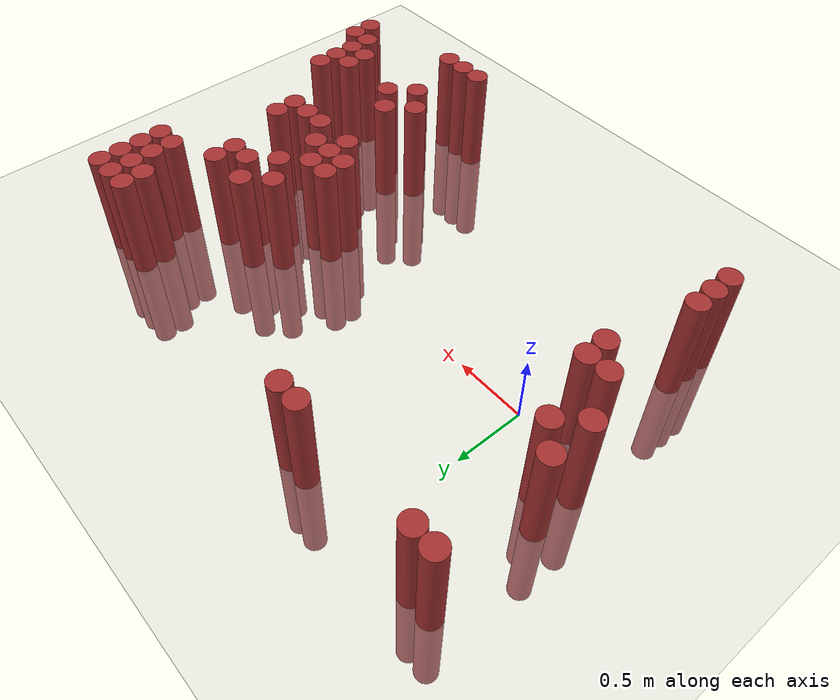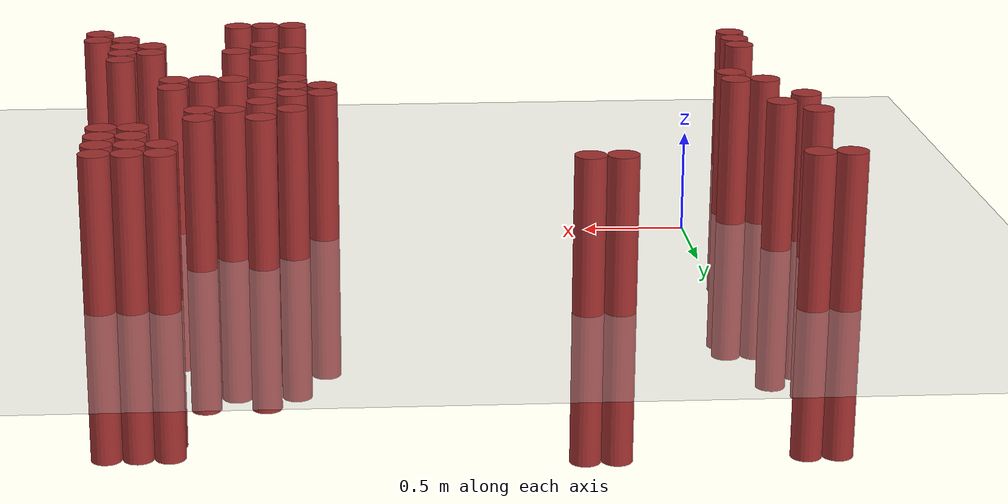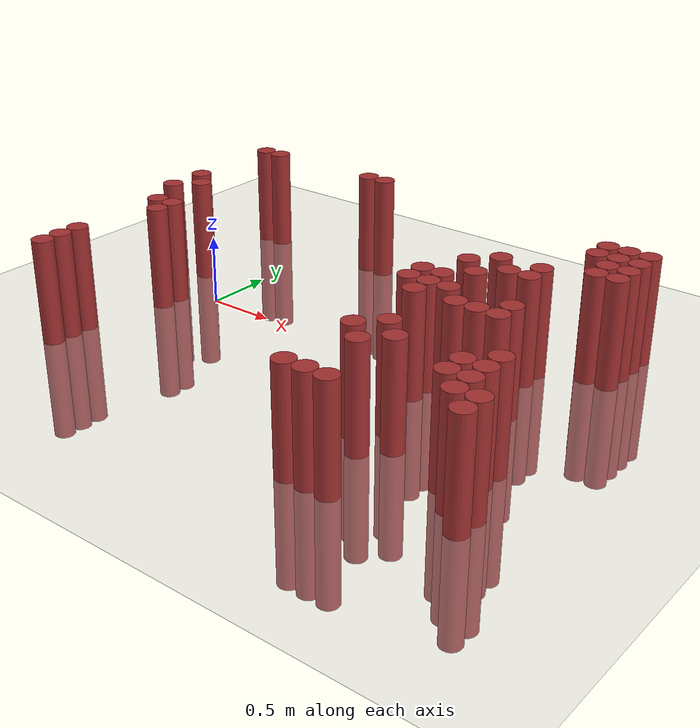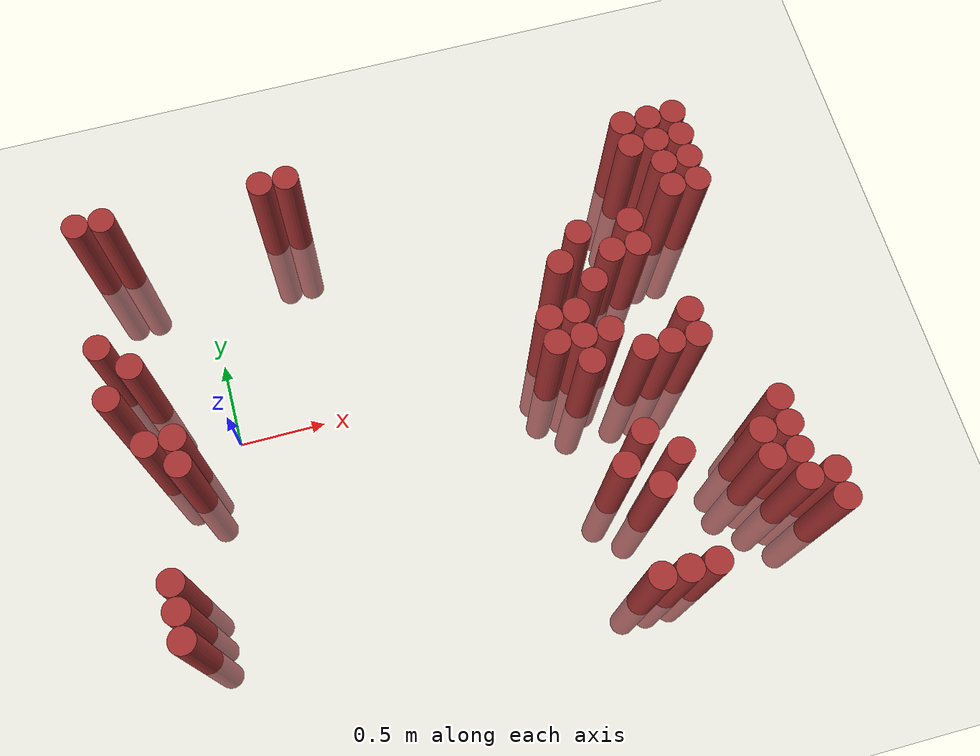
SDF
<sdf version="1.6">
 <world name="default">
  <model name="ground_plane">
   <static>1</static>
   <link name="link">
    <collision name="collision">
     <geometry><plane><normal>0 0 1</normal><size>100 100</size></plane></geometry>
     <surface><friction><ode><mu>100</mu><mu2>50</mu2></ode></friction></surface>
    </collision>
    <visual name="visual">
     <cast_shadows>0</cast_shadows>
     <geometry><plane><normal>0 0 1</normal><size>100 100</size></plane></geometry>
     <material>
      <script><uri>file://media/materials/scripts/gazebo.material</uri><name>Gazebo/Grey</name></script>
     </material>
    </visual>
   </link>
  </model>
  <model name="unit_cylinder_356">
   <static>1</static>
   <pose>-0.575000 0.175000 0.000000 0.000000 0.000000 0.000000</pose>
   <link name="link">
    <inertial>
     <mass>1</mass>
     <inertia><ixx>0.145833</ixx><ixy>0</ixy><ixz>0</ixz><iyy>0.145833</iyy><iyz>0</iyz><izz>0.125</izz></inertia>
    </inertial>
    <collision name="collision">
     <geometry><cylinder><radius>0.075000</radius><length>1.5</length></cylinder></geometry>
    </collision>
    <visual name="visual">
     <geometry><cylinder><radius>0.075000</radius><length>1.5</length></cylinder></geometry>
     <material>
      <ambient>0.648000 0.192000 0.192000 1</ambient>
      <diffuse>0.648000 0.192000 0.192000 1</diffuse>
     </material>
     <material>
      <script><name>Gazebo/Grey</name><uri>file://media/materials/scripts/gazebo.material</uri></script>
     </material>
    </visual>
   </link>
  </model>
  <model name="unit_cylinder_357">
   <static>1</static>
   <pose>-0.575000 0.475000 0.000000 0.000000 0.000000 0.000000</pose>
   <link name="link">
    <inertial>
     <mass>1</mass>
     <inertia><ixx>0.145833</ixx><ixy>0</ixy><ixz>0</ixz><iyy>0.145833</iyy><iyz>0</iyz><izz>0.125</izz></inertia>
    </inertial>
    <collision name="collision">
     <geometry><cylinder><radius>0.075000</radius><length>1.5</length></cylinder></geometry>
    </collision>
    <visual name="visual">
     <geometry><cylinder><radius>0.075000</radius><length>1.5</length></cylinder></geometry>
     <material>
      <ambient>0.648000 0.192000 0.192000 1</ambient>
      <diffuse>0.648000 0.192000 0.192000 1</diffuse>
     </material>
     <material>
      <script><name>Gazebo/Grey</name><uri>file://media/materials/scripts/gazebo.material</uri></script>
     </material>
    </visual>
   </link>
  </model>
  <model name="unit_cylinder_358">
   <static>1</static>
   <pose>-0.575000 1.225000 0.000000 0.000000 0.000000 0.000000</pose>
   <link name="link">
    <inertial>
     <mass>1</mass>
     <inertia><ixx>0.145833</ixx><ixy>0</ixy><ixz>0</ixz><iyy>0.145833</iyy><iyz>0</iyz><izz>0.125</izz></inertia>
    </inertial>
    <collision name="collision">
     <geometry><cylinder><radius>0.075000</radius><length>1.5</length></cylinder></geometry>
    </collision>
    <visual name="visual">
     <geometry><cylinder><radius>0.075000</radius><length>1.5</length></cylinder></geometry>
     <material>
      <ambient>0.648000 0.192000 0.192000 1</ambient>
      <diffuse>0.648000 0.192000 0.192000 1</diffuse>
     </material>
     <material>
      <script><name>Gazebo/Grey</name><uri>file://media/materials/scripts/gazebo.material</uri></script>
     </material>
    </visual>
   </link>
  </model>
  <model name="unit_cylinder_360">
   <static>1</static>
   <pose>-0.425000 -1.175000 0.000000 0.000000 0.000000 0.000000</pose>
   <link name="link">
    <inertial>
     <mass>1</mass>
     <inertia><ixx>0.145833</ixx><ixy>0</ixy><ixz>0</ixz><iyy>0.145833</iyy><iyz>0</iyz><izz>0.125</izz></inertia>
    </inertial>
    <collision name="collision">
     <geometry><cylinder><radius>0.075000</radius><length>1.5</length></cylinder></geometry>
    </collision>
    <visual name="visual">
     <geometry><cylinder><radius>0.075000</radius><length>1.5</length></cylinder></geometry>
     <material>
      <ambient>0.648000 0.192000 0.192000 1</ambient>
      <diffuse>0.648000 0.192000 0.192000 1</diffuse>
     </material>
     <material>
      <script><name>Gazebo/Grey</name><uri>file://media/materials/scripts/gazebo.material</uri></script>
     </material>
    </visual>
   </link>
  </model>
  <model name="unit_cylinder_361">
   <static>1</static>
   <pose>-0.425000 -1.025000 0.000000 0.000000 0.000000 0.000000</pose>
   <link name="link">
    <inertial>
     <mass>1</mass>
     <inertia><ixx>0.145833</ixx><ixy>0</ixy><ixz>0</ixz><iyy>0.145833</iyy><iyz>0</iyz><izz>0.125</izz></inertia>
    </inertial>
    <collision name="collision">
     <geometry><cylinder><radius>0.075000</radius><length>1.5</length></cylinder></geometry>
    </collision>
    <visual name="visual">
     <geometry><cylinder><radius>0.075000</radius><length>1.5</length></cylinder></geometry>
     <material>
      <ambient>0.648000 0.192000 0.192000 1</ambient>
      <diffuse>0.648000 0.192000 0.192000 1</diffuse>
     </material>
     <material>
      <script><name>Gazebo/Grey</name><uri>file://media/materials/scripts/gazebo.material</uri></script>
     </material>
    </visual>
   </link>
  </model>
  <model name="unit_cylinder_362">
   <static>1</static>
   <pose>-0.425000 -0.875000 0.000000 0.000000 0.000000 0.000000</pose>
   <link name="link">
    <inertial>
     <mass>1</mass>
     <inertia><ixx>0.145833</ixx><ixy>0</ixy><ixz>0</ixz><iyy>0.145833</iyy><iyz>0</iyz><izz>0.125</izz></inertia>
    </inertial>
    <collision name="collision">
     <geometry><cylinder><radius>0.075000</radius><length>1.5</length></cylinder></geometry>
    </collision>
    <visual name="visual">
     <geometry><cylinder><radius>0.075000</radius><length>1.5</length></cylinder></geometry>
     <material>
      <ambient>0.648000 0.192000 0.192000 1</ambient>
      <diffuse>0.648000 0.192000 0.192000 1</diffuse>
     </material>
     <material>
      <script><name>Gazebo/Grey</name><uri>file://media/materials/scripts/gazebo.material</uri></script>
     </material>
    </visual>
   </link>
  </model>
  <model name="unit_cylinder_363">
   <static>1</static>
   <pose>-0.425000 -0.125000 0.000000 0.000000 0.000000 0.000000</pose>
   <link name="link">
    <inertial>
     <mass>1</mass>
     <inertia><ixx>0.145833</ixx><ixy>0</ixy><ixz>0</ixz><iyy>0.145833</iyy><iyz>0</iyz><izz>0.125</izz></inertia>
    </inertial>
    <collision name="collision">
     <geometry><cylinder><radius>0.075000</radius><length>1.5</length></cylinder></geometry>
    </collision>
    <visual name="visual">
     <geometry><cylinder><radius>0.075000</radius><length>1.5</length></cylinder></geometry>
     <material>
      <ambient>0.648000 0.192000 0.192000 1</ambient>
      <diffuse>0.648000 0.192000 0.192000 1</diffuse>
     </material>
     <material>
      <script><name>Gazebo/Grey</name><uri>file://media/materials/scripts/gazebo.material</uri></script>
     </material>
    </visual>
   </link>
  </model>
  <model name="unit_cylinder_364">
   <static>1</static>
   <pose>-0.425000 0.325000 0.000000 0.000000 0.000000 0.000000</pose>
   <link name="link">
    <inertial>
     <mass>1</mass>
     <inertia><ixx>0.145833</ixx><ixy>0</ixy><ixz>0</ixz><iyy>0.145833</iyy><iyz>0</iyz><izz>0.125</izz></inertia>
    </inertial>
    <collision name="collision">
     <geometry><cylinder><radius>0.075000</radius><length>1.5</length></cylinder></geometry>
    </collision>
    <visual name="visual">
     <geometry><cylinder><radius>0.075000</radius><length>1.5</length></cylinder></geometry>
     <material>
      <ambient>0.648000 0.192000 0.192000 1</ambient>
      <diffuse>0.648000 0.192000 0.192000 1</diffuse>
     </material>
     <material>
      <script><name>Gazebo/Grey</name><uri>file://media/materials/scripts/gazebo.material</uri></script>
     </material>
    </visual>
   </link>
  </model>
  <model name="unit_cylinder_365">
   <static>1</static>
   <pose>-0.425000 1.225000 0.000000 0.000000 0.000000 0.000000</pose>
   <link name="link">
    <inertial>
     <mass>1</mass>
     <inertia><ixx>0.145833</ixx><ixy>0</ixy><ixz>0</ixz><iyy>0.145833</iyy><iyz>0</iyz><izz>0.125</izz></inertia>
    </inertial>
    <collision name="collision">
     <geometry><cylinder><radius>0.075000</radius><length>1.5</length></cylinder></geometry>
    </collision>
    <visual name="visual">
     <geometry><cylinder><radius>0.075000</radius><length>1.5</length></cylinder></geometry>
     <material>
      <ambient>0.648000 0.192000 0.192000 1</ambient>
      <diffuse>0.648000 0.192000 0.192000 1</diffuse>
     </material>
     <material>
      <script><name>Gazebo/Grey</name><uri>file://media/materials/scripts/gazebo.material</uri></script>
     </material>
    </visual>
   </link>
  </model>
  <model name="unit_cylinder_368">
   <static>1</static>
   <pose>-0.275000 -0.275000 0.000000 0.000000 0.000000 0.000000</pose>
   <link name="link">
    <inertial>
     <mass>1</mass>
     <inertia><ixx>0.145833</ixx><ixy>0</ixy><ixz>0</ixz><iyy>0.145833</iyy><iyz>0</iyz><izz>0.125</izz></inertia>
    </inertial>
    <collision name="collision">
     <geometry><cylinder><radius>0.075000</radius><length>1.5</length></cylinder></geometry>
    </collision>
    <visual name="visual">
     <geometry><cylinder><radius>0.075000</radius><length>1.5</length></cylinder></geometry>
     <material>
      <ambient>0.648000 0.192000 0.192000 1</ambient>
      <diffuse>0.648000 0.192000 0.192000 1</diffuse>
     </material>
     <material>
      <script><name>Gazebo/Grey</name><uri>file://media/materials/scripts/gazebo.material</uri></script>
     </material>
    </visual>
   </link>
  </model>
  <model name="unit_cylinder_369">
   <static>1</static>
   <pose>-0.275000 -0.125000 0.000000 0.000000 0.000000 0.000000</pose>
   <link name="link">
    <inertial>
     <mass>1</mass>
     <inertia><ixx>0.145833</ixx><ixy>0</ixy><ixz>0</ixz><iyy>0.145833</iyy><iyz>0</iyz><izz>0.125</izz></inertia>
    </inertial>
    <collision name="collision">
     <geometry><cylinder><radius>0.075000</radius><length>1.5</length></cylinder></geometry>
    </collision>
    <visual name="visual">
     <geometry><cylinder><radius>0.075000</radius><length>1.5</length></cylinder></geometry>
     <material>
      <ambient>0.648000 0.192000 0.192000 1</ambient>
      <diffuse>0.648000 0.192000 0.192000 1</diffuse>
     </material>
     <material>
      <script><name>Gazebo/Grey</name><uri>file://media/materials/scripts/gazebo.material</uri></script>
     </material>
    </visual>
   </link>
  </model>
  <model name="unit_cylinder_377">
   <static>1</static>
   <pose>0.475000 1.225000 0.000000 0.000000 0.000000 0.000000</pose>
   <link name="link">
    <inertial>
     <mass>1</mass>
     <inertia><ixx>0.145833</ixx><ixy>0</ixy><ixz>0</ixz><iyy>0.145833</iyy><iyz>0</iyz><izz>0.125</izz></inertia>
    </inertial>
    <collision name="collision">
     <geometry><cylinder><radius>0.075000</radius><length>1.5</length></cylinder></geometry>
    </collision>
    <visual name="visual">
     <geometry><cylinder><radius>0.075000</radius><length>1.5</length></cylinder></geometry>
     <material>
      <ambient>0.648000 0.192000 0.192000 1</ambient>
      <diffuse>0.648000 0.192000 0.192000 1</diffuse>
     </material>
     <material>
      <script><name>Gazebo/Grey</name><uri>file://media/materials/scripts/gazebo.material</uri></script>
     </material>
    </visual>
   </link>
  </model>
  <model name="unit_cylinder_381">
   <static>1</static>
   <pose>0.625000 1.225000 0.000000 0.000000 0.000000 0.000000</pose>
   <link name="link">
    <inertial>
     <mass>1</mass>
     <inertia><ixx>0.145833</ixx><ixy>0</ixy><ixz>0</ixz><iyy>0.145833</iyy><iyz>0</iyz><izz>0.125</izz></inertia>
    </inertial>
    <collision name="collision">
     <geometry><cylinder><radius>0.075000</radius><length>1.5</length></cylinder></geometry>
    </collision>
    <visual name="visual">
     <geometry><cylinder><radius>0.075000</radius><length>1.5</length></cylinder></geometry>
     <material>
      <ambient>0.648000 0.192000 0.192000 1</ambient>
      <diffuse>0.648000 0.192000 0.192000 1</diffuse>
     </material>
     <material>
      <script><name>Gazebo/Grey</name><uri>file://media/materials/scripts/gazebo.material</uri></script>
     </material>
    </visual>
   </link>
  </model>
  <model name="unit_cylinder_392">
   <static>1</static>
   <pose>1.825000 -0.125000 0.000000 0.000000 0.000000 0.000000</pose>
   <link name="link">
    <inertial>
     <mass>1</mass>
     <inertia><ixx>0.145833</ixx><ixy>0</ixy><ixz>0</ixz><iyy>0.145833</iyy><iyz>0</iyz><izz>0.125</izz></inertia>
    </inertial>
    <collision name="collision">
     <geometry><cylinder><radius>0.075000</radius><length>1.5</length></cylinder></geometry>
    </collision>
    <visual name="visual">
     <geometry><cylinder><radius>0.075000</radius><length>1.5</length></cylinder></geometry>
     <material>
      <ambient>0.648000 0.192000 0.192000 1</ambient>
      <diffuse>0.648000 0.192000 0.192000 1</diffuse>
     </material>
     <material>
      <script><name>Gazebo/Grey</name><uri>file://media/materials/scripts/gazebo.material</uri></script>
     </material>
    </visual>
   </link>
  </model>
  <model name="unit_cylinder_393">
   <static>1</static>
   <pose>1.825000 0.025000 0.000000 0.000000 0.000000 0.000000</pose>
   <link name="link">
    <inertial>
     <mass>1</mass>
     <inertia><ixx>0.145833</ixx><ixy>0</ixy><ixz>0</ixz><iyy>0.145833</iyy><iyz>0</iyz><izz>0.125</izz></inertia>
    </inertial>
    <collision name="collision">
     <geometry><cylinder><radius>0.075000</radius><length>1.5</length></cylinder></geometry>
    </collision>
    <visual name="visual">
     <geometry><cylinder><radius>0.075000</radius><length>1.5</length></cylinder></geometry>
     <material>
      <ambient>0.648000 0.192000 0.192000 1</ambient>
      <diffuse>0.648000 0.192000 0.192000 1</diffuse>
     </material>
     <material>
      <script><name>Gazebo/Grey</name><uri>file://media/materials/scripts/gazebo.material</uri></script>
     </material>
    </visual>
   </link>
  </model>
  <model name="unit_cylinder_394">
   <static>1</static>
   <pose>1.975000 -1.475000 0.000000 0.000000 0.000000 0.000000</pose>
   <link name="link">
    <inertial>
     <mass>1</mass>
     <inertia><ixx>0.145833</ixx><ixy>0</ixy><ixz>0</ixz><iyy>0.145833</iyy><iyz>0</iyz><izz>0.125</izz></inertia>
    </inertial>
    <collision name="collision">
     <geometry><cylinder><radius>0.075000</radius><length>1.5</length></cylinder></geometry>
    </collision>
    <visual name="visual">
     <geometry><cylinder><radius>0.075000</radius><length>1.5</length></cylinder></geometry>
     <material>
      <ambient>0.648000 0.192000 0.192000 1</ambient>
      <diffuse>0.648000 0.192000 0.192000 1</diffuse>
     </material>
     <material>
      <script><name>Gazebo/Grey</name><uri>file://media/materials/scripts/gazebo.material</uri></script>
     </material>
    </visual>
   </link>
  </model>
  <model name="unit_cylinder_395">
   <static>1</static>
   <pose>1.975000 -0.875000 0.000000 0.000000 0.000000 0.000000</pose>
   <link name="link">
    <inertial>
     <mass>1</mass>
     <inertia><ixx>0.145833</ixx><ixy>0</ixy><ixz>0</ixz><iyy>0.145833</iyy><iyz>0</iyz><izz>0.125</izz></inertia>
    </inertial>
    <collision name="collision">
     <geometry><cylinder><radius>0.075000</radius><length>1.5</length></cylinder></geometry>
    </collision>
    <visual name="visual">
     <geometry><cylinder><radius>0.075000</radius><length>1.5</length></cylinder></geometry>
     <material>
      <ambient>0.648000 0.192000 0.192000 1</ambient>
      <diffuse>0.648000 0.192000 0.192000 1</diffuse>
     </material>
     <material>
      <script><name>Gazebo/Grey</name><uri>file://media/materials/scripts/gazebo.material</uri></script>
     </material>
    </visual>
   </link>
  </model>
  <model name="unit_cylinder_396">
   <static>1</static>
   <pose>1.975000 -0.275000 0.000000 0.000000 0.000000 0.000000</pose>
   <link name="link">
    <inertial>
     <mass>1</mass>
     <inertia><ixx>0.145833</ixx><ixy>0</ixy><ixz>0</ixz><iyy>0.145833</iyy><iyz>0</iyz><izz>0.125</izz></inertia>
    </inertial>
    <collision name="collision">
     <geometry><cylinder><radius>0.075000</radius><length>1.5</length></cylinder></geometry>
    </collision>
    <visual name="visual">
     <geometry><cylinder><radius>0.075000</radius><length>1.5</length></cylinder></geometry>
     <material>
      <ambient>0.648000 0.192000 0.192000 1</ambient>
      <diffuse>0.648000 0.192000 0.192000 1</diffuse>
     </material>
     <material>
      <script><name>Gazebo/Grey</name><uri>file://media/materials/scripts/gazebo.material</uri></script>
     </material>
    </visual>
   </link>
  </model>
  <model name="unit_cylinder_397">
   <static>1</static>
   <pose>1.975000 -0.125000 0.000000 0.000000 0.000000 0.000000</pose>
   <link name="link">
    <inertial>
     <mass>1</mass>
     <inertia><ixx>0.145833</ixx><ixy>0</ixy><ixz>0</ixz><iyy>0.145833</iyy><iyz>0</iyz><izz>0.125</izz></inertia>
    </inertial>
    <collision name="collision">
     <geometry><cylinder><radius>0.075000</radius><length>1.5</length></cylinder></geometry>
    </collision>
    <visual name="visual">
     <geometry><cylinder><radius>0.075000</radius><length>1.5</length></cylinder></geometry>
     <material>
      <ambient>0.648000 0.192000 0.192000 1</ambient>
      <diffuse>0.648000 0.192000 0.192000 1</diffuse>
     </material>
     <material>
      <script><name>Gazebo/Grey</name><uri>file://media/materials/scripts/gazebo.material</uri></script>
     </material>
    </visual>
   </link>
  </model>
  <model name="unit_cylinder_398">
   <static>1</static>
   <pose>1.975000 0.025000 0.000000 0.000000 0.000000 0.000000</pose>
   <link name="link">
    <inertial>
     <mass>1</mass>
     <inertia><ixx>0.145833</ixx><ixy>0</ixy><ixz>0</ixz><iyy>0.145833</iyy><iyz>0</iyz><izz>0.125</izz></inertia>
    </inertial>
    <collision name="collision">
     <geometry><cylinder><radius>0.075000</radius><length>1.5</length></cylinder></geometry>
    </collision>
    <visual name="visual">
     <geometry><cylinder><radius>0.075000</radius><length>1.5</length></cylinder></geometry>
     <material>
      <ambient>0.648000 0.192000 0.192000 1</ambient>
      <diffuse>0.648000 0.192000 0.192000 1</diffuse>
     </material>
     <material>
      <script><name>Gazebo/Grey</name><uri>file://media/materials/scripts/gazebo.material</uri></script>
     </material>
    </visual>
   </link>
  </model>
  <model name="unit_cylinder_399">
   <static>1</static>
   <pose>1.975000 0.325000 0.000000 0.000000 0.000000 0.000000</pose>
   <link name="link">
    <inertial>
     <mass>1</mass>
     <inertia><ixx>0.145833</ixx><ixy>0</ixy><ixz>0</ixz><iyy>0.145833</iyy><iyz>0</iyz><izz>0.125</izz></inertia>
    </inertial>
    <collision name="collision">
     <geometry><cylinder><radius>0.075000</radius><length>1.5</length></cylinder></geometry>
    </collision>
    <visual name="visual">
     <geometry><cylinder><radius>0.075000</radius><length>1.5</length></cylinder></geometry>
     <material>
      <ambient>0.648000 0.192000 0.192000 1</ambient>
      <diffuse>0.648000 0.192000 0.192000 1</diffuse>
     </material>
     <material>
      <script><name>Gazebo/Grey</name><uri>file://media/materials/scripts/gazebo.material</uri></script>
     </material>
    </visual>
   </link>
  </model>
  <model name="unit_cylinder_401">
   <static>1</static>
   <pose>2.125000 -1.475000 0.000000 0.000000 0.000000 0.000000</pose>
   <link name="link">
    <inertial>
     <mass>1</mass>
     <inertia><ixx>0.145833</ixx><ixy>0</ixy><ixz>0</ixz><iyy>0.145833</iyy><iyz>0</iyz><izz>0.125</izz></inertia>
    </inertial>
    <collision name="collision">
     <geometry><cylinder><radius>0.075000</radius><length>1.5</length></cylinder></geometry>
    </collision>
    <visual name="visual">
     <geometry><cylinder><radius>0.075000</radius><length>1.5</length></cylinder></geometry>
     <material>
      <ambient>0.648000 0.192000 0.192000 1</ambient>
      <diffuse>0.648000 0.192000 0.192000 1</diffuse>
     </material>
     <material>
      <script><name>Gazebo/Grey</name><uri>file://media/materials/scripts/gazebo.material</uri></script>
     </material>
    </visual>
   </link>
  </model>
  <model name="unit_cylinder_402">
   <static>1</static>
   <pose>2.125000 -1.025000 0.000000 0.000000 0.000000 0.000000</pose>
   <link name="link">
    <inertial>
     <mass>1</mass>
     <inertia><ixx>0.145833</ixx><ixy>0</ixy><ixz>0</ixz><iyy>0.145833</iyy><iyz>0</iyz><izz>0.125</izz></inertia>
    </inertial>
    <collision name="collision">
     <geometry><cylinder><radius>0.075000</radius><length>1.5</length></cylinder></geometry>
    </collision>
    <visual name="visual">
     <geometry><cylinder><radius>0.075000</radius><length>1.5</length></cylinder></geometry>
     <material>
      <ambient>0.648000 0.192000 0.192000 1</ambient>
      <diffuse>0.648000 0.192000 0.192000 1</diffuse>
     </material>
     <material>
      <script><name>Gazebo/Grey</name><uri>file://media/materials/scripts/gazebo.material</uri></script>
     </material>
    </visual>
   </link>
  </model>
  <model name="unit_cylinder_403">
   <static>1</static>
   <pose>2.125000 -0.725000 0.000000 0.000000 0.000000 0.000000</pose>
   <link name="link">
    <inertial>
     <mass>1</mass>
     <inertia><ixx>0.145833</ixx><ixy>0</ixy><ixz>0</ixz><iyy>0.145833</iyy><iyz>0</iyz><izz>0.125</izz></inertia>
    </inertial>
    <collision name="collision">
     <geometry><cylinder><radius>0.075000</radius><length>1.5</length></cylinder></geometry>
    </collision>
    <visual name="visual">
     <geometry><cylinder><radius>0.075000</radius><length>1.5</length></cylinder></geometry>
     <material>
      <ambient>0.648000 0.192000 0.192000 1</ambient>
      <diffuse>0.648000 0.192000 0.192000 1</diffuse>
     </material>
     <material>
      <script><name>Gazebo/Grey</name><uri>file://media/materials/scripts/gazebo.material</uri></script>
     </material>
    </visual>
   </link>
  </model>
  <model name="unit_cylinder_404">
   <static>1</static>
   <pose>2.125000 -0.125000 0.000000 0.000000 0.000000 0.000000</pose>
   <link name="link">
    <inertial>
     <mass>1</mass>
     <inertia><ixx>0.145833</ixx><ixy>0</ixy><ixz>0</ixz><iyy>0.145833</iyy><iyz>0</iyz><izz>0.125</izz></inertia>
    </inertial>
    <collision name="collision">
     <geometry><cylinder><radius>0.075000</radius><length>1.5</length></cylinder></geometry>
    </collision>
    <visual name="visual">
     <geometry><cylinder><radius>0.075000</radius><length>1.5</length></cylinder></geometry>
     <material>
      <ambient>0.648000 0.192000 0.192000 1</ambient>
      <diffuse>0.648000 0.192000 0.192000 1</diffuse>
     </material>
     <material>
      <script><name>Gazebo/Grey</name><uri>file://media/materials/scripts/gazebo.material</uri></script>
     </material>
    </visual>
   </link>
  </model>
  <model name="unit_cylinder_405">
   <static>1</static>
   <pose>2.125000 0.175000 0.000000 0.000000 0.000000 0.000000</pose>
   <link name="link">
    <inertial>
     <mass>1</mass>
     <inertia><ixx>0.145833</ixx><ixy>0</ixy><ixz>0</ixz><iyy>0.145833</iyy><iyz>0</iyz><izz>0.125</izz></inertia>
    </inertial>
    <collision name="collision">
     <geometry><cylinder><radius>0.075000</radius><length>1.5</length></cylinder></geometry>
    </collision>
    <visual name="visual">
     <geometry><cylinder><radius>0.075000</radius><length>1.5</length></cylinder></geometry>
     <material>
      <ambient>0.648000 0.192000 0.192000 1</ambient>
      <diffuse>0.648000 0.192000 0.192000 1</diffuse>
     </material>
     <material>
      <script><name>Gazebo/Grey</name><uri>file://media/materials/scripts/gazebo.material</uri></script>
     </material>
    </visual>
   </link>
  </model>
  <model name="unit_cylinder_406">
   <static>1</static>
   <pose>2.125000 0.475000 0.000000 0.000000 0.000000 0.000000</pose>
   <link name="link">
    <inertial>
     <mass>1</mass>
     <inertia><ixx>0.145833</ixx><ixy>0</ixy><ixz>0</ixz><iyy>0.145833</iyy><iyz>0</iyz><izz>0.125</izz></inertia>
    </inertial>
    <collision name="collision">
     <geometry><cylinder><radius>0.075000</radius><length>1.5</length></cylinder></geometry>
    </collision>
    <visual name="visual">
     <geometry><cylinder><radius>0.075000</radius><length>1.5</length></cylinder></geometry>
     <material>
      <ambient>0.648000 0.192000 0.192000 1</ambient>
      <diffuse>0.648000 0.192000 0.192000 1</diffuse>
     </material>
     <material>
      <script><name>Gazebo/Grey</name><uri>file://media/materials/scripts/gazebo.material</uri></script>
     </material>
    </visual>
   </link>
  </model>
  <model name="unit_cylinder_407">
   <static>1</static>
   <pose>2.275000 -1.475000 0.000000 0.000000 0.000000 0.000000</pose>
   <link name="link">
    <inertial>
     <mass>1</mass>
     <inertia><ixx>0.145833</ixx><ixy>0</ixy><ixz>0</ixz><iyy>0.145833</iyy><iyz>0</iyz><izz>0.125</izz></inertia>
    </inertial>
    <collision name="collision">
     <geometry><cylinder><radius>0.075000</radius><length>1.5</length></cylinder></geometry>
    </collision>
    <visual name="visual">
     <geometry><cylinder><radius>0.075000</radius><length>1.5</length></cylinder></geometry>
     <material>
      <ambient>0.648000 0.192000 0.192000 1</ambient>
      <diffuse>0.648000 0.192000 0.192000 1</diffuse>
     </material>
     <material>
      <script><name>Gazebo/Grey</name><uri>file://media/materials/scripts/gazebo.material</uri></script>
     </material>
    </visual>
   </link>
  </model>
  <model name="unit_cylinder_408">
   <static>1</static>
   <pose>2.275000 -0.875000 0.000000 0.000000 0.000000 0.000000</pose>
   <link name="link">
    <inertial>
     <mass>1</mass>
     <inertia><ixx>0.145833</ixx><ixy>0</ixy><ixz>0</ixz><iyy>0.145833</iyy><iyz>0</iyz><izz>0.125</izz></inertia>
    </inertial>
    <collision name="collision">
     <geometry><cylinder><radius>0.075000</radius><length>1.5</length></cylinder></geometry>
    </collision>
    <visual name="visual">
     <geometry><cylinder><radius>0.075000</radius><length>1.5</length></cylinder></geometry>
     <material>
      <ambient>0.648000 0.192000 0.192000 1</ambient>
      <diffuse>0.648000 0.192000 0.192000 1</diffuse>
     </material>
     <material>
      <script><name>Gazebo/Grey</name><uri>file://media/materials/scripts/gazebo.material</uri></script>
     </material>
    </visual>
   </link>
  </model>
  <model name="unit_cylinder_409">
   <static>1</static>
   <pose>2.275000 -0.275000 0.000000 0.000000 0.000000 0.000000</pose>
   <link name="link">
    <inertial>
     <mass>1</mass>
     <inertia><ixx>0.145833</ixx><ixy>0</ixy><ixz>0</ixz><iyy>0.145833</iyy><iyz>0</iyz><izz>0.125</izz></inertia>
    </inertial>
    <collision name="collision">
     <geometry><cylinder><radius>0.075000</radius><length>1.5</length></cylinder></geometry>
    </collision>
    <visual name="visual">
     <geometry><cylinder><radius>0.075000</radius><length>1.5</length></cylinder></geometry>
     <material>
      <ambient>0.648000 0.192000 0.192000 1</ambient>
      <diffuse>0.648000 0.192000 0.192000 1</diffuse>
     </material>
     <material>
      <script><name>Gazebo/Grey</name><uri>file://media/materials/scripts/gazebo.material</uri></script>
     </material>
    </visual>
   </link>
  </model>
  <model name="unit_cylinder_410">
   <static>1</static>
   <pose>2.275000 0.325000 0.000000 0.000000 0.000000 0.000000</pose>
   <link name="link">
    <inertial>
     <mass>1</mass>
     <inertia><ixx>0.145833</ixx><ixy>0</ixy><ixz>0</ixz><iyy>0.145833</iyy><iyz>0</iyz><izz>0.125</izz></inertia>
    </inertial>
    <collision name="collision">
     <geometry><cylinder><radius>0.075000</radius><length>1.5</length></cylinder></geometry>
    </collision>
    <visual name="visual">
     <geometry><cylinder><radius>0.075000</radius><length>1.5</length></cylinder></geometry>
     <material>
      <ambient>0.648000 0.192000 0.192000 1</ambient>
      <diffuse>0.648000 0.192000 0.192000 1</diffuse>
     </material>
     <material>
      <script><name>Gazebo/Grey</name><uri>file://media/materials/scripts/gazebo.material</uri></script>
     </material>
    </visual>
   </link>
  </model>
  <model name="unit_cylinder_411">
   <static>1</static>
   <pose>2.425000 -0.275000 0.000000 0.000000 0.000000 0.000000</pose>
   <link name="link">
    <inertial>
     <mass>1</mass>
     <inertia><ixx>0.145833</ixx><ixy>0</ixy><ixz>0</ixz><iyy>0.145833</iyy><iyz>0</iyz><izz>0.125</izz></inertia>
    </inertial>
    <collision name="collision">
     <geometry><cylinder><radius>0.075000</radius><length>1.5</length></cylinder></geometry>
    </collision>
    <visual name="visual">
     <geometry><cylinder><radius>0.075000</radius><length>1.5</length></cylinder></geometry>
     <material>
      <ambient>0.648000 0.192000 0.192000 1</ambient>
      <diffuse>0.648000 0.192000 0.192000 1</diffuse>
     </material>
     <material>
      <script><name>Gazebo/Grey</name><uri>file://media/materials/scripts/gazebo.material</uri></script>
     </material>
    </visual>
   </link>
  </model>
  <model name="unit_cylinder_412">
   <static>1</static>
   <pose>2.425000 0.325000 0.000000 0.000000 0.000000 0.000000</pose>
   <link name="link">
    <inertial>
     <mass>1</mass>
     <inertia><ixx>0.145833</ixx><ixy>0</ixy><ixz>0</ixz><iyy>0.145833</iyy><iyz>0</iyz><izz>0.125</izz></inertia>
    </inertial>
    <collision name="collision">
     <geometry><cylinder><radius>0.075000</radius><length>1.5</length></cylinder></geometry>
    </collision>
    <visual name="visual">
     <geometry><cylinder><radius>0.075000</radius><length>1.5</length></cylinder></geometry>
     <material>
      <ambient>0.648000 0.192000 0.192000 1</ambient>
      <diffuse>0.648000 0.192000 0.192000 1</diffuse>
     </material>
     <material>
      <script><name>Gazebo/Grey</name><uri>file://media/materials/scripts/gazebo.material</uri></script>
     </material>
    </visual>
   </link>
  </model>
  <model name="unit_cylinder_413">
   <static>1</static>
   <pose>2.425000 0.475000 0.000000 0.000000 0.000000 0.000000</pose>
   <link name="link">
    <inertial>
     <mass>1</mass>
     <inertia><ixx>0.145833</ixx><ixy>0</ixy><ixz>0</ixz><iyy>0.145833</iyy><iyz>0</iyz><izz>0.125</izz></inertia>
    </inertial>
    <collision name="collision">
     <geometry><cylinder><radius>0.075000</radius><length>1.5</length></cylinder></geometry>
    </collision>
    <visual name="visual">
     <geometry><cylinder><radius>0.075000</radius><length>1.5</length></cylinder></geometry>
     <material>
      <ambient>0.648000 0.192000 0.192000 1</ambient>
      <diffuse>0.648000 0.192000 0.192000 1</diffuse>
     </material>
     <material>
      <script><name>Gazebo/Grey</name><uri>file://media/materials/scripts/gazebo.material</uri></script>
     </material>
    </visual>
   </link>
  </model>
  <model name="unit_cylinder_416">
   <static>1</static>
   <pose>2.575000 -0.275000 0.000000 0.000000 0.000000 0.000000</pose>
   <link name="link">
    <inertial>
     <mass>1</mass>
     <inertia><ixx>0.145833</ixx><ixy>0</ixy><ixz>0</ixz><iyy>0.145833</iyy><iyz>0</iyz><izz>0.125</izz></inertia>
    </inertial>
    <collision name="collision">
     <geometry><cylinder><radius>0.075000</radius><length>1.5</length></cylinder></geometry>
    </collision>
    <visual name="visual">
     <geometry><cylinder><radius>0.075000</radius><length>1.5</length></cylinder></geometry>
     <material>
      <ambient>0.648000 0.192000 0.192000 1</ambient>
      <diffuse>0.648000 0.192000 0.192000 1</diffuse>
     </material>
     <material>
      <script><name>Gazebo/Grey</name><uri>file://media/materials/scripts/gazebo.material</uri></script>
     </material>
    </visual>
   </link>
  </model>
  <model name="unit_cylinder_417">
   <static>1</static>
   <pose>2.575000 -0.125000 0.000000 0.000000 0.000000 0.000000</pose>
   <link name="link">
    <inertial>
     <mass>1</mass>
     <inertia><ixx>0.145833</ixx><ixy>0</ixy><ixz>0</ixz><iyy>0.145833</iyy><iyz>0</iyz><izz>0.125</izz></inertia>
    </inertial>
    <collision name="collision">
     <geometry><cylinder><radius>0.075000</radius><length>1.5</length></cylinder></geometry>
    </collision>
    <visual name="visual">
     <geometry><cylinder><radius>0.075000</radius><length>1.5</length></cylinder></geometry>
     <material>
      <ambient>0.648000 0.192000 0.192000 1</ambient>
      <diffuse>0.648000 0.192000 0.192000 1</diffuse>
     </material>
     <material>
      <script><name>Gazebo/Grey</name><uri>file://media/materials/scripts/gazebo.material</uri></script>
     </material>
    </visual>
   </link>
  </model>
  <model name="unit_cylinder_418">
   <static>1</static>
   <pose>2.575000 0.925000 0.000000 0.000000 0.000000 0.000000</pose>
   <link name="link">
    <inertial>
     <mass>1</mass>
     <inertia><ixx>0.145833</ixx><ixy>0</ixy><ixz>0</ixz><iyy>0.145833</iyy><iyz>0</iyz><izz>0.125</izz></inertia>
    </inertial>
    <collision name="collision">
     <geometry><cylinder><radius>0.075000</radius><length>1.5</length></cylinder></geometry>
    </collision>
    <visual name="visual">
     <geometry><cylinder><radius>0.075000</radius><length>1.5</length></cylinder></geometry>
     <material>
      <ambient>0.648000 0.192000 0.192000 1</ambient>
      <diffuse>0.648000 0.192000 0.192000 1</diffuse>
     </material>
     <material>
      <script><name>Gazebo/Grey</name><uri>file://media/materials/scripts/gazebo.material</uri></script>
     </material>
    </visual>
   </link>
  </model>
  <model name="unit_cylinder_419">
   <static>1</static>
   <pose>2.575000 1.075000 0.000000 0.000000 0.000000 0.000000</pose>
   <link name="link">
    <inertial>
     <mass>1</mass>
     <inertia><ixx>0.145833</ixx><ixy>0</ixy><ixz>0</ixz><iyy>0.145833</iyy><iyz>0</iyz><izz>0.125</izz></inertia>
    </inertial>
    <collision name="collision">
     <geometry><cylinder><radius>0.075000</radius><length>1.5</length></cylinder></geometry>
    </collision>
    <visual name="visual">
     <geometry><cylinder><radius>0.075000</radius><length>1.5</length></cylinder></geometry>
     <material>
      <ambient>0.648000 0.192000 0.192000 1</ambient>
      <diffuse>0.648000 0.192000 0.192000 1</diffuse>
     </material>
     <material>
      <script><name>Gazebo/Grey</name><uri>file://media/materials/scripts/gazebo.material</uri></script>
     </material>
    </visual>
   </link>
  </model>
  <model name="unit_cylinder_423">
   <static>1</static>
   <pose>2.725000 -1.025000 0.000000 0.000000 0.000000 0.000000</pose>
   <link name="link">
    <inertial>
     <mass>1</mass>
     <inertia><ixx>0.145833</ixx><ixy>0</ixy><ixz>0</ixz><iyy>0.145833</iyy><iyz>0</iyz><izz>0.125</izz></inertia>
    </inertial>
    <collision name="collision">
     <geometry><cylinder><radius>0.075000</radius><length>1.5</length></cylinder></geometry>
    </collision>
    <visual name="visual">
     <geometry><cylinder><radius>0.075000</radius><length>1.5</length></cylinder></geometry>
     <material>
      <ambient>0.648000 0.192000 0.192000 1</ambient>
      <diffuse>0.648000 0.192000 0.192000 1</diffuse>
     </material>
     <material>
      <script><name>Gazebo/Grey</name><uri>file://media/materials/scripts/gazebo.material</uri></script>
     </material>
    </visual>
   </link>
  </model>
  <model name="unit_cylinder_424">
   <static>1</static>
   <pose>2.725000 -0.875000 0.000000 0.000000 0.000000 0.000000</pose>
   <link name="link">
    <inertial>
     <mass>1</mass>
     <inertia><ixx>0.145833</ixx><ixy>0</ixy><ixz>0</ixz><iyy>0.145833</iyy><iyz>0</iyz><izz>0.125</izz></inertia>
    </inertial>
    <collision name="collision">
     <geometry><cylinder><radius>0.075000</radius><length>1.5</length></cylinder></geometry>
    </collision>
    <visual name="visual">
     <geometry><cylinder><radius>0.075000</radius><length>1.5</length></cylinder></geometry>
     <material>
      <ambient>0.648000 0.192000 0.192000 1</ambient>
      <diffuse>0.648000 0.192000 0.192000 1</diffuse>
     </material>
     <material>
      <script><name>Gazebo/Grey</name><uri>file://media/materials/scripts/gazebo.material</uri></script>
     </material>
    </visual>
   </link>
  </model>
  <model name="unit_cylinder_425">
   <static>1</static>
   <pose>2.725000 0.625000 0.000000 0.000000 0.000000 0.000000</pose>
   <link name="link">
    <inertial>
     <mass>1</mass>
     <inertia><ixx>0.145833</ixx><ixy>0</ixy><ixz>0</ixz><iyy>0.145833</iyy><iyz>0</iyz><izz>0.125</izz></inertia>
    </inertial>
    <collision name="collision">
     <geometry><cylinder><radius>0.075000</radius><length>1.5</length></cylinder></geometry>
    </collision>
    <visual name="visual">
     <geometry><cylinder><radius>0.075000</radius><length>1.5</length></cylinder></geometry>
     <material>
      <ambient>0.648000 0.192000 0.192000 1</ambient>
      <diffuse>0.648000 0.192000 0.192000 1</diffuse>
     </material>
     <material>
      <script><name>Gazebo/Grey</name><uri>file://media/materials/scripts/gazebo.material</uri></script>
     </material>
    </visual>
   </link>
  </model>
  <model name="unit_cylinder_426">
   <static>1</static>
   <pose>2.725000 0.775000 0.000000 0.000000 0.000000 0.000000</pose>
   <link name="link">
    <inertial>
     <mass>1</mass>
     <inertia><ixx>0.145833</ixx><ixy>0</ixy><ixz>0</ixz><iyy>0.145833</iyy><iyz>0</iyz><izz>0.125</izz></inertia>
    </inertial>
    <collision name="collision">
     <geometry><cylinder><radius>0.075000</radius><length>1.5</length></cylinder></geometry>
    </collision>
    <visual name="visual">
     <geometry><cylinder><radius>0.075000</radius><length>1.5</length></cylinder></geometry>
     <material>
      <ambient>0.648000 0.192000 0.192000 1</ambient>
      <diffuse>0.648000 0.192000 0.192000 1</diffuse>
     </material>
     <material>
      <script><name>Gazebo/Grey</name><uri>file://media/materials/scripts/gazebo.material</uri></script>
     </material>
    </visual>
   </link>
  </model>
  <model name="unit_cylinder_427">
   <static>1</static>
   <pose>2.725000 0.925000 0.000000 0.000000 0.000000 0.000000</pose>
   <link name="link">
    <inertial>
     <mass>1</mass>
     <inertia><ixx>0.145833</ixx><ixy>0</ixy><ixz>0</ixz><iyy>0.145833</iyy><iyz>0</iyz><izz>0.125</izz></inertia>
    </inertial>
    <collision name="collision">
     <geometry><cylinder><radius>0.075000</radius><length>1.5</length></cylinder></geometry>
    </collision>
    <visual name="visual">
     <geometry><cylinder><radius>0.075000</radius><length>1.5</length></cylinder></geometry>
     <material>
      <ambient>0.648000 0.192000 0.192000 1</ambient>
      <diffuse>0.648000 0.192000 0.192000 1</diffuse>
     </material>
     <material>
      <script><name>Gazebo/Grey</name><uri>file://media/materials/scripts/gazebo.material</uri></script>
     </material>
    </visual>
   </link>
  </model>
  <model name="unit_cylinder_428">
   <static>1</static>
   <pose>2.725000 1.075000 0.000000 0.000000 0.000000 0.000000</pose>
   <link name="link">
    <inertial>
     <mass>1</mass>
     <inertia><ixx>0.145833</ixx><ixy>0</ixy><ixz>0</ixz><iyy>0.145833</iyy><iyz>0</iyz><izz>0.125</izz></inertia>
    </inertial>
    <collision name="collision">
     <geometry><cylinder><radius>0.075000</radius><length>1.5</length></cylinder></geometry>
    </collision>
    <visual name="visual">
     <geometry><cylinder><radius>0.075000</radius><length>1.5</length></cylinder></geometry>
     <material>
      <ambient>0.648000 0.192000 0.192000 1</ambient>
      <diffuse>0.648000 0.192000 0.192000 1</diffuse>
     </material>
     <material>
      <script><name>Gazebo/Grey</name><uri>file://media/materials/scripts/gazebo.material</uri></script>
     </material>
    </visual>
   </link>
  </model>
  <model name="unit_cylinder_430">
   <static>1</static>
   <pose>2.875000 -1.175000 0.000000 0.000000 0.000000 0.000000</pose>
   <link name="link">
    <inertial>
     <mass>1</mass>
     <inertia><ixx>0.145833</ixx><ixy>0</ixy><ixz>0</ixz><iyy>0.145833</iyy><iyz>0</iyz><izz>0.125</izz></inertia>
    </inertial>
    <collision name="collision">
     <geometry><cylinder><radius>0.075000</radius><length>1.5</length></cylinder></geometry>
    </collision>
    <visual name="visual">
     <geometry><cylinder><radius>0.075000</radius><length>1.5</length></cylinder></geometry>
     <material>
      <ambient>0.648000 0.192000 0.192000 1</ambient>
      <diffuse>0.648000 0.192000 0.192000 1</diffuse>
     </material>
     <material>
      <script><name>Gazebo/Grey</name><uri>file://media/materials/scripts/gazebo.material</uri></script>
     </material>
    </visual>
   </link>
  </model>
  <model name="unit_cylinder_431">
   <static>1</static>
   <pose>2.875000 -1.025000 0.000000 0.000000 0.000000 0.000000</pose>
   <link name="link">
    <inertial>
     <mass>1</mass>
     <inertia><ixx>0.145833</ixx><ixy>0</ixy><ixz>0</ixz><iyy>0.145833</iyy><iyz>0</iyz><izz>0.125</izz></inertia>
    </inertial>
    <collision name="collision">
     <geometry><cylinder><radius>0.075000</radius><length>1.5</length></cylinder></geometry>
    </collision>
    <visual name="visual">
     <geometry><cylinder><radius>0.075000</radius><length>1.5</length></cylinder></geometry>
     <material>
      <ambient>0.648000 0.192000 0.192000 1</ambient>
      <diffuse>0.648000 0.192000 0.192000 1</diffuse>
     </material>
     <material>
      <script><name>Gazebo/Grey</name><uri>file://media/materials/scripts/gazebo.material</uri></script>
     </material>
    </visual>
   </link>
  </model>
  <model name="unit_cylinder_432">
   <static>1</static>
   <pose>2.875000 -0.875000 0.000000 0.000000 0.000000 0.000000</pose>
   <link name="link">
    <inertial>
     <mass>1</mass>
     <inertia><ixx>0.145833</ixx><ixy>0</ixy><ixz>0</ixz><iyy>0.145833</iyy><iyz>0</iyz><izz>0.125</izz></inertia>
    </inertial>
    <collision name="collision">
     <geometry><cylinder><radius>0.075000</radius><length>1.5</length></cylinder></geometry>
    </collision>
    <visual name="visual">
     <geometry><cylinder><radius>0.075000</radius><length>1.5</length></cylinder></geometry>
     <material>
      <ambient>0.648000 0.192000 0.192000 1</ambient>
      <diffuse>0.648000 0.192000 0.192000 1</diffuse>
     </material>
     <material>
      <script><name>Gazebo/Grey</name><uri>file://media/materials/scripts/gazebo.material</uri></script>
     </material>
    </visual>
   </link>
  </model>
  <model name="unit_cylinder_433">
   <static>1</static>
   <pose>2.875000 -0.725000 0.000000 0.000000 0.000000 0.000000</pose>
   <link name="link">
    <inertial>
     <mass>1</mass>
     <inertia><ixx>0.145833</ixx><ixy>0</ixy><ixz>0</ixz><iyy>0.145833</iyy><iyz>0</iyz><izz>0.125</izz></inertia>
    </inertial>
    <collision name="collision">
     <geometry><cylinder><radius>0.075000</radius><length>1.5</length></cylinder></geometry>
    </collision>
    <visual name="visual">
     <geometry><cylinder><radius>0.075000</radius><length>1.5</length></cylinder></geometry>
     <material>
      <ambient>0.648000 0.192000 0.192000 1</ambient>
      <diffuse>0.648000 0.192000 0.192000 1</diffuse>
     </material>
     <material>
      <script><name>Gazebo/Grey</name><uri>file://media/materials/scripts/gazebo.material</uri></script>
     </material>
    </visual>
   </link>
  </model>
  <model name="unit_cylinder_434">
   <static>1</static>
   <pose>2.875000 0.625000 0.000000 0.000000 0.000000 0.000000</pose>
   <link name="link">
    <inertial>
     <mass>1</mass>
     <inertia><ixx>0.145833</ixx><ixy>0</ixy><ixz>0</ixz><iyy>0.145833</iyy><iyz>0</iyz><izz>0.125</izz></inertia>
    </inertial>
    <collision name="collision">
     <geometry><cylinder><radius>0.075000</radius><length>1.5</length></cylinder></geometry>
    </collision>
    <visual name="visual">
     <geometry><cylinder><radius>0.075000</radius><length>1.5</length></cylinder></geometry>
     <material>
      <ambient>0.648000 0.192000 0.192000 1</ambient>
      <diffuse>0.648000 0.192000 0.192000 1</diffuse>
     </material>
     <material>
      <script><name>Gazebo/Grey</name><uri>file://media/materials/scripts/gazebo.material</uri></script>
     </material>
    </visual>
   </link>
  </model>
  <model name="unit_cylinder_435">
   <static>1</static>
   <pose>2.875000 0.775000 0.000000 0.000000 0.000000 0.000000</pose>
   <link name="link">
    <inertial>
     <mass>1</mass>
     <inertia><ixx>0.145833</ixx><ixy>0</ixy><ixz>0</ixz><iyy>0.145833</iyy><iyz>0</iyz><izz>0.125</izz></inertia>
    </inertial>
    <collision name="collision">
     <geometry><cylinder><radius>0.075000</radius><length>1.5</length></cylinder></geometry>
    </collision>
    <visual name="visual">
     <geometry><cylinder><radius>0.075000</radius><length>1.5</length></cylinder></geometry>
     <material>
      <ambient>0.648000 0.192000 0.192000 1</ambient>
      <diffuse>0.648000 0.192000 0.192000 1</diffuse>
     </material>
     <material>
      <script><name>Gazebo/Grey</name><uri>file://media/materials/scripts/gazebo.material</uri></script>
     </material>
    </visual>
   </link>
  </model>
  <model name="unit_cylinder_436">
   <static>1</static>
   <pose>2.875000 0.925000 0.000000 0.000000 0.000000 0.000000</pose>
   <link name="link">
    <inertial>
     <mass>1</mass>
     <inertia><ixx>0.145833</ixx><ixy>0</ixy><ixz>0</ixz><iyy>0.145833</iyy><iyz>0</iyz><izz>0.125</izz></inertia>
    </inertial>
    <collision name="collision">
     <geometry><cylinder><radius>0.075000</radius><length>1.5</length></cylinder></geometry>
    </collision>
    <visual name="visual">
     <geometry><cylinder><radius>0.075000</radius><length>1.5</length></cylinder></geometry>
     <material>
      <ambient>0.648000 0.192000 0.192000 1</ambient>
      <diffuse>0.648000 0.192000 0.192000 1</diffuse>
     </material>
     <material>
      <script><name>Gazebo/Grey</name><uri>file://media/materials/scripts/gazebo.material</uri></script>
     </material>
    </visual>
   </link>
  </model>
  <model name="unit_cylinder_437">
   <static>1</static>
   <pose>2.875000 1.075000 0.000000 0.000000 0.000000 0.000000</pose>
   <link name="link">
    <inertial>
     <mass>1</mass>
     <inertia><ixx>0.145833</ixx><ixy>0</ixy><ixz>0</ixz><iyy>0.145833</iyy><iyz>0</iyz><izz>0.125</izz></inertia>
    </inertial>
    <collision name="collision">
     <geometry><cylinder><radius>0.075000</radius><length>1.5</length></cylinder></geometry>
    </collision>
    <visual name="visual">
     <geometry><cylinder><radius>0.075000</radius><length>1.5</length></cylinder></geometry>
     <material>
      <ambient>0.648000 0.192000 0.192000 1</ambient>
      <diffuse>0.648000 0.192000 0.192000 1</diffuse>
     </material>
     <material>
      <script><name>Gazebo/Grey</name><uri>file://media/materials/scripts/gazebo.material</uri></script>
     </material>
    </visual>
   </link>
  </model>
  <model name="unit_cylinder_438">
   <static>1</static>
   <pose>3.025000 -1.325000 0.000000 0.000000 0.000000 0.000000</pose>
   <link name="link">
    <inertial>
     <mass>1</mass>
     <inertia><ixx>0.145833</ixx><ixy>0</ixy><ixz>0</ixz><iyy>0.145833</iyy><iyz>0</iyz><izz>0.125</izz></inertia>
    </inertial>
    <collision name="collision">
     <geometry><cylinder><radius>0.075000</radius><length>1.5</length></cylinder></geometry>
    </collision>
    <visual name="visual">
     <geometry><cylinder><radius>0.075000</radius><length>1.5</length></cylinder></geometry>
     <material>
      <ambient>0.648000 0.192000 0.192000 1</ambient>
      <diffuse>0.648000 0.192000 0.192000 1</diffuse>
     </material>
     <material>
      <script><name>Gazebo/Grey</name><uri>file://media/materials/scripts/gazebo.material</uri></script>
     </material>
    </visual>
   </link>
  </model>
  <model name="unit_cylinder_439">
   <static>1</static>
   <pose>3.025000 -1.175000 0.000000 0.000000 0.000000 0.000000</pose>
   <link name="link">
    <inertial>
     <mass>1</mass>
     <inertia><ixx>0.145833</ixx><ixy>0</ixy><ixz>0</ixz><iyy>0.145833</iyy><iyz>0</iyz><izz>0.125</izz></inertia>
    </inertial>
    <collision name="collision">
     <geometry><cylinder><radius>0.075000</radius><length>1.5</length></cylinder></geometry>
    </collision>
    <visual name="visual">
     <geometry><cylinder><radius>0.075000</radius><length>1.5</length></cylinder></geometry>
     <material>
      <ambient>0.648000 0.192000 0.192000 1</ambient>
      <diffuse>0.648000 0.192000 0.192000 1</diffuse>
     </material>
     <material>
      <script><name>Gazebo/Grey</name><uri>file://media/materials/scripts/gazebo.material</uri></script>
     </material>
    </visual>
   </link>
  </model>
 </world>
</sdf>
